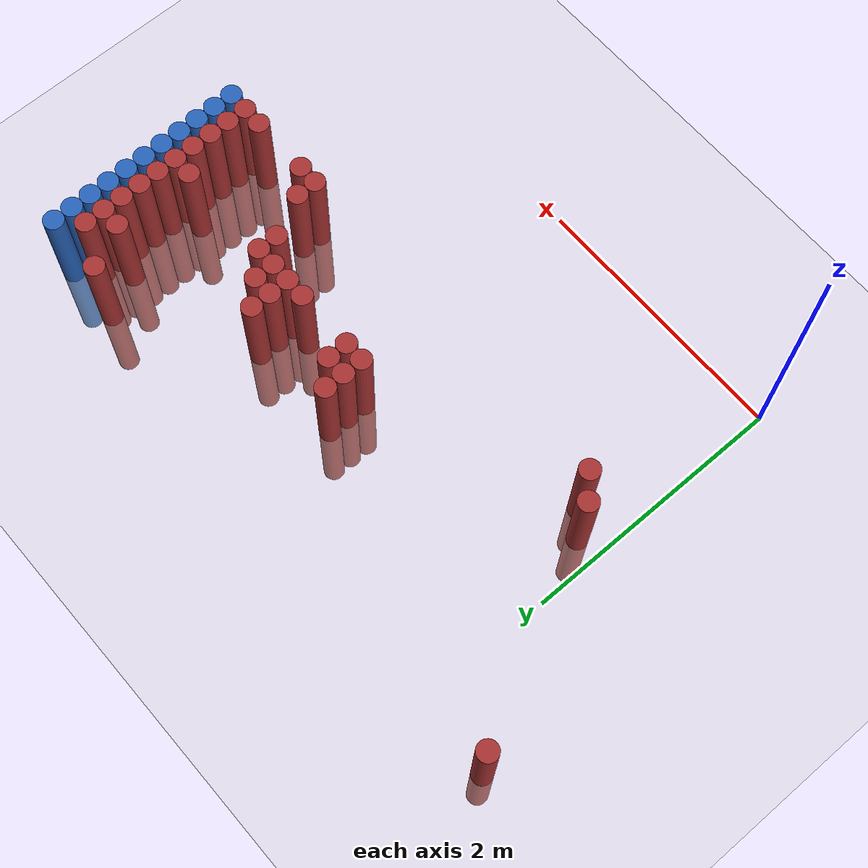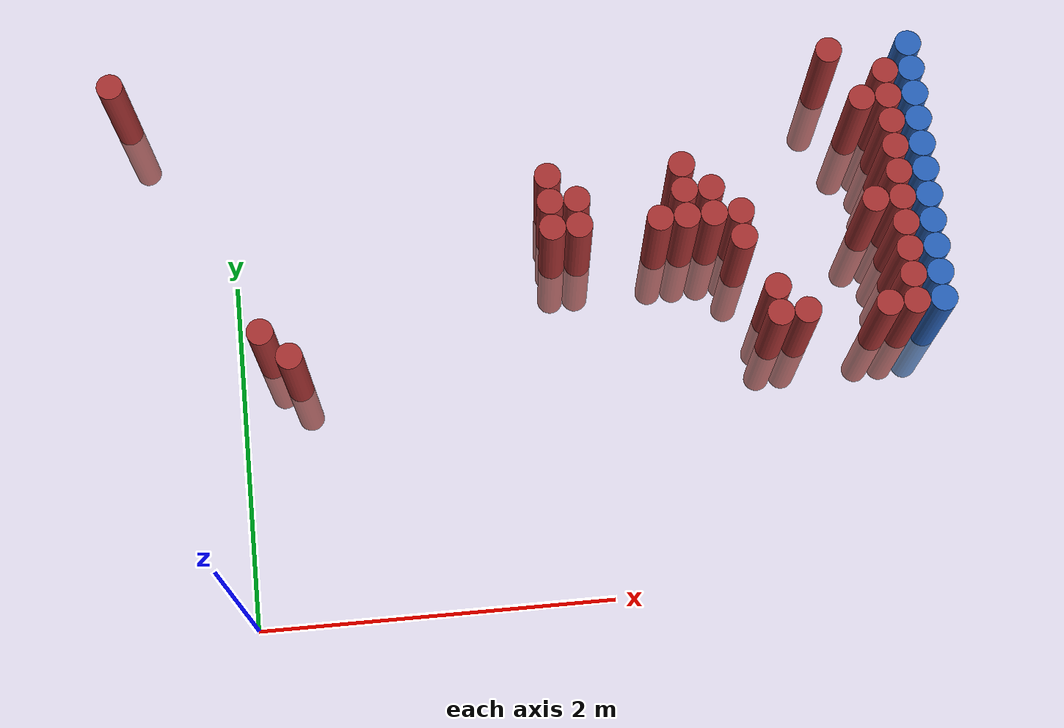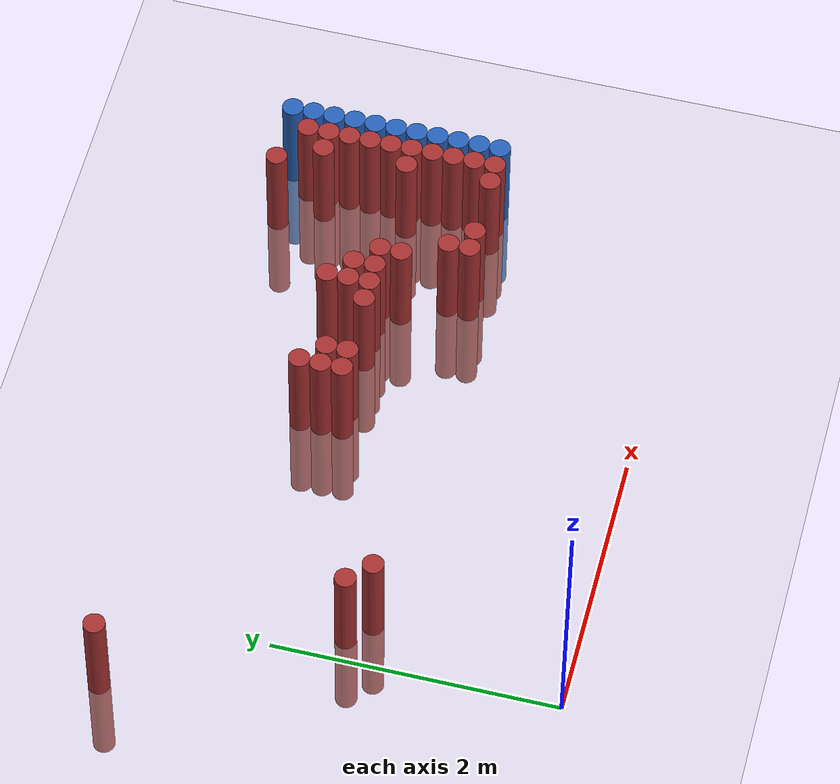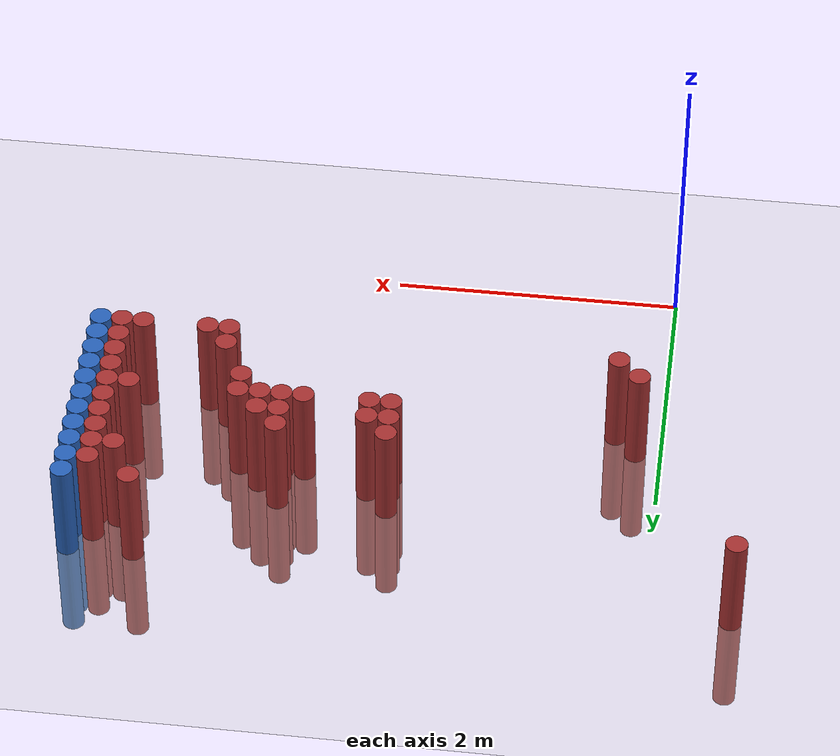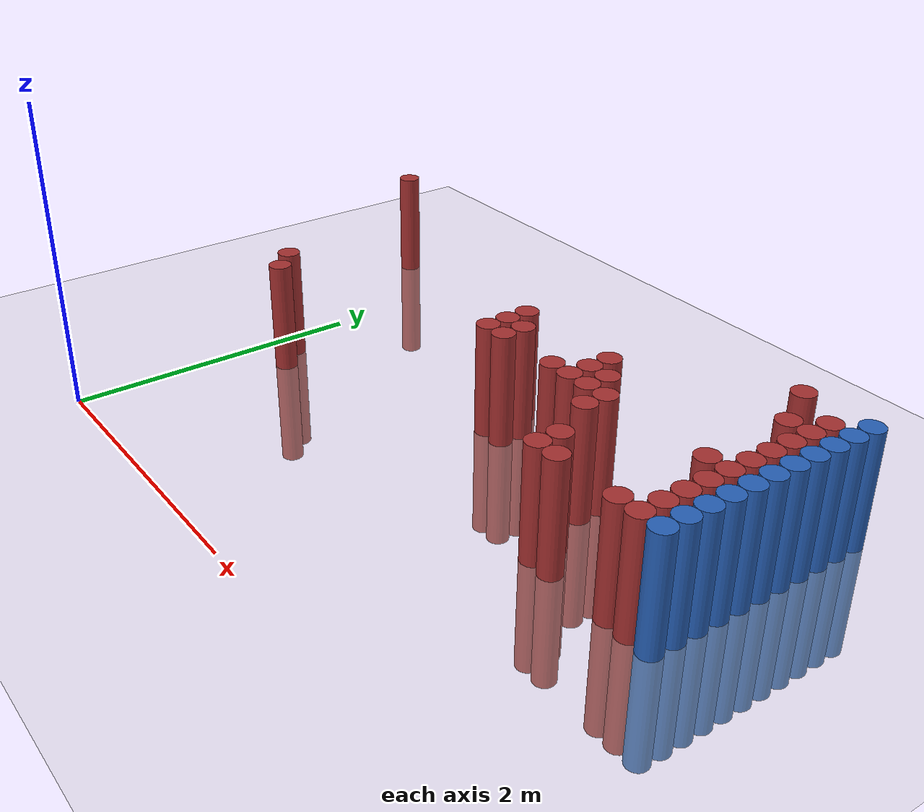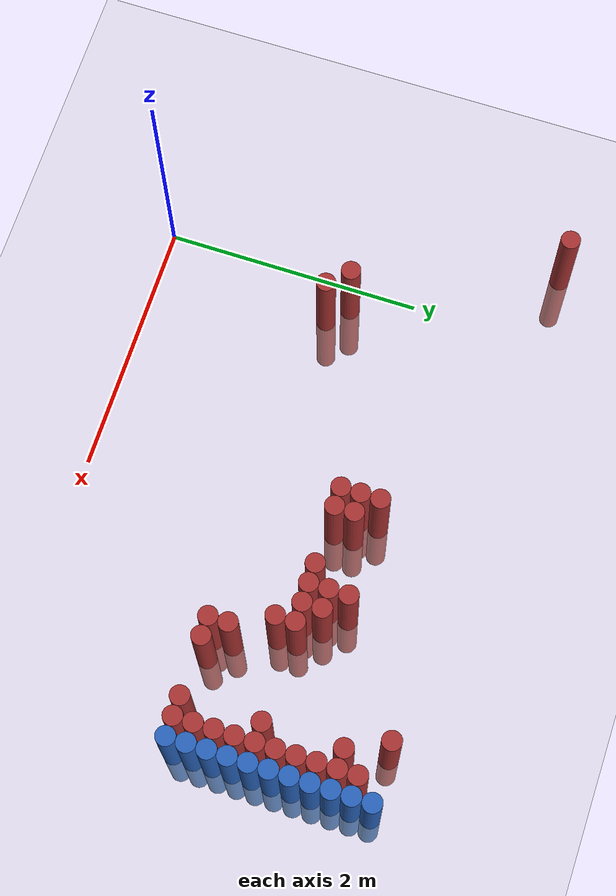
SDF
<sdf version="1.6">
 <world name="default">
  <model name="ground_plane">
   <static>1</static>
   <link name="link">
    <collision name="collision">
     <geometry><plane><normal>0 0 1</normal><size>100 100</size></plane></geometry>
     <surface><friction><ode><mu>100</mu><mu2>50</mu2></ode></friction></surface>
    </collision>
    <visual name="visual">
     <cast_shadows>0</cast_shadows>
     <geometry><plane><normal>0 0 1</normal><size>100 100</size></plane></geometry>
     <material>
      <script><uri>file://media/materials/scripts/gazebo.material</uri><name>Gazebo/Grey</name></script>
     </material>
    </visual>
   </link>
  </model>
  <model name="unit_cylinder_134">
   <static>1</static>
   <pose>3.925000 1.525000 0.000000 0.000000 0.000000 0.000000</pose>
   <link name="link">
    <inertial>
     <mass>1</mass>
     <inertia><ixx>0.145833</ixx><ixy>0</ixy><ixz>0</ixz><iyy>0.145833</iyy><iyz>0</iyz><izz>0.125</izz></inertia>
    </inertial>
    <collision name="collision">
     <geometry><cylinder><radius>0.075000</radius><length>1.5</length></cylinder></geometry>
    </collision>
    <visual name="visual">
     <geometry><cylinder><radius>0.075000</radius><length>1.5</length></cylinder></geometry>
     <material>
      <ambient>0.152000 0.379000 0.720000 1</ambient>
      <diffuse>0.152000 0.379000 0.720000 1</diffuse>
     </material>
     <material>
      <script><name>Gazebo/Grey</name><uri>file://media/materials/scripts/gazebo.material</uri></script>
     </material>
    </visual>
   </link>
  </model>
  <model name="unit_cylinder_136">
   <static>1</static>
   <pose>3.925000 1.675000 0.000000 0.000000 0.000000 0.000000</pose>
   <link name="link">
    <inertial>
     <mass>1</mass>
     <inertia><ixx>0.145833</ixx><ixy>0</ixy><ixz>0</ixz><iyy>0.145833</iyy><iyz>0</iyz><izz>0.125</izz></inertia>
    </inertial>
    <collision name="collision">
     <geometry><cylinder><radius>0.075000</radius><length>1.5</length></cylinder></geometry>
    </collision>
    <visual name="visual">
     <geometry><cylinder><radius>0.075000</radius><length>1.5</length></cylinder></geometry>
     <material>
      <ambient>0.152000 0.379000 0.720000 1</ambient>
      <diffuse>0.152000 0.379000 0.720000 1</diffuse>
     </material>
     <material>
      <script><name>Gazebo/Grey</name><uri>file://media/materials/scripts/gazebo.material</uri></script>
     </material>
    </visual>
   </link>
  </model>
  <model name="unit_cylinder_138">
   <static>1</static>
   <pose>3.925000 1.825000 0.000000 0.000000 0.000000 0.000000</pose>
   <link name="link">
    <inertial>
     <mass>1</mass>
     <inertia><ixx>0.145833</ixx><ixy>0</ixy><ixz>0</ixz><iyy>0.145833</iyy><iyz>0</iyz><izz>0.125</izz></inertia>
    </inertial>
    <collision name="collision">
     <geometry><cylinder><radius>0.075000</radius><length>1.5</length></cylinder></geometry>
    </collision>
    <visual name="visual">
     <geometry><cylinder><radius>0.075000</radius><length>1.5</length></cylinder></geometry>
     <material>
      <ambient>0.152000 0.379000 0.720000 1</ambient>
      <diffuse>0.152000 0.379000 0.720000 1</diffuse>
     </material>
     <material>
      <script><name>Gazebo/Grey</name><uri>file://media/materials/scripts/gazebo.material</uri></script>
     </material>
    </visual>
   </link>
  </model>
  <model name="unit_cylinder_140">
   <static>1</static>
   <pose>3.925000 1.975000 0.000000 0.000000 0.000000 0.000000</pose>
   <link name="link">
    <inertial>
     <mass>1</mass>
     <inertia><ixx>0.145833</ixx><ixy>0</ixy><ixz>0</ixz><iyy>0.145833</iyy><iyz>0</iyz><izz>0.125</izz></inertia>
    </inertial>
    <collision name="collision">
     <geometry><cylinder><radius>0.075000</radius><length>1.5</length></cylinder></geometry>
    </collision>
    <visual name="visual">
     <geometry><cylinder><radius>0.075000</radius><length>1.5</length></cylinder></geometry>
     <material>
      <ambient>0.152000 0.379000 0.720000 1</ambient>
      <diffuse>0.152000 0.379000 0.720000 1</diffuse>
     </material>
     <material>
      <script><name>Gazebo/Grey</name><uri>file://media/materials/scripts/gazebo.material</uri></script>
     </material>
    </visual>
   </link>
  </model>
  <model name="unit_cylinder_142">
   <static>1</static>
   <pose>3.925000 2.125000 0.000000 0.000000 0.000000 0.000000</pose>
   <link name="link">
    <inertial>
     <mass>1</mass>
     <inertia><ixx>0.145833</ixx><ixy>0</ixy><ixz>0</ixz><iyy>0.145833</iyy><iyz>0</iyz><izz>0.125</izz></inertia>
    </inertial>
    <collision name="collision">
     <geometry><cylinder><radius>0.075000</radius><length>1.5</length></cylinder></geometry>
    </collision>
    <visual name="visual">
     <geometry><cylinder><radius>0.075000</radius><length>1.5</length></cylinder></geometry>
     <material>
      <ambient>0.152000 0.379000 0.720000 1</ambient>
      <diffuse>0.152000 0.379000 0.720000 1</diffuse>
     </material>
     <material>
      <script><name>Gazebo/Grey</name><uri>file://media/materials/scripts/gazebo.material</uri></script>
     </material>
    </visual>
   </link>
  </model>
  <model name="unit_cylinder_144">
   <static>1</static>
   <pose>3.925000 2.275000 0.000000 0.000000 0.000000 0.000000</pose>
   <link name="link">
    <inertial>
     <mass>1</mass>
     <inertia><ixx>0.145833</ixx><ixy>0</ixy><ixz>0</ixz><iyy>0.145833</iyy><iyz>0</iyz><izz>0.125</izz></inertia>
    </inertial>
    <collision name="collision">
     <geometry><cylinder><radius>0.075000</radius><length>1.5</length></cylinder></geometry>
    </collision>
    <visual name="visual">
     <geometry><cylinder><radius>0.075000</radius><length>1.5</length></cylinder></geometry>
     <material>
      <ambient>0.152000 0.379000 0.720000 1</ambient>
      <diffuse>0.152000 0.379000 0.720000 1</diffuse>
     </material>
     <material>
      <script><name>Gazebo/Grey</name><uri>file://media/materials/scripts/gazebo.material</uri></script>
     </material>
    </visual>
   </link>
  </model>
  <model name="unit_cylinder_146">
   <static>1</static>
   <pose>3.925000 2.425000 0.000000 0.000000 0.000000 0.000000</pose>
   <link name="link">
    <inertial>
     <mass>1</mass>
     <inertia><ixx>0.145833</ixx><ixy>0</ixy><ixz>0</ixz><iyy>0.145833</iyy><iyz>0</iyz><izz>0.125</izz></inertia>
    </inertial>
    <collision name="collision">
     <geometry><cylinder><radius>0.075000</radius><length>1.5</length></cylinder></geometry>
    </collision>
    <visual name="visual">
     <geometry><cylinder><radius>0.075000</radius><length>1.5</length></cylinder></geometry>
     <material>
      <ambient>0.152000 0.379000 0.720000 1</ambient>
      <diffuse>0.152000 0.379000 0.720000 1</diffuse>
     </material>
     <material>
      <script><name>Gazebo/Grey</name><uri>file://media/materials/scripts/gazebo.material</uri></script>
     </material>
    </visual>
   </link>
  </model>
  <model name="unit_cylinder_148">
   <static>1</static>
   <pose>3.925000 2.575000 0.000000 0.000000 0.000000 0.000000</pose>
   <link name="link">
    <inertial>
     <mass>1</mass>
     <inertia><ixx>0.145833</ixx><ixy>0</ixy><ixz>0</ixz><iyy>0.145833</iyy><iyz>0</iyz><izz>0.125</izz></inertia>
    </inertial>
    <collision name="collision">
     <geometry><cylinder><radius>0.075000</radius><length>1.5</length></cylinder></geometry>
    </collision>
    <visual name="visual">
     <geometry><cylinder><radius>0.075000</radius><length>1.5</length></cylinder></geometry>
     <material>
      <ambient>0.152000 0.379000 0.720000 1</ambient>
      <diffuse>0.152000 0.379000 0.720000 1</diffuse>
     </material>
     <material>
      <script><name>Gazebo/Grey</name><uri>file://media/materials/scripts/gazebo.material</uri></script>
     </material>
    </visual>
   </link>
  </model>
  <model name="unit_cylinder_150">
   <static>1</static>
   <pose>3.925000 2.725000 0.000000 0.000000 0.000000 0.000000</pose>
   <link name="link">
    <inertial>
     <mass>1</mass>
     <inertia><ixx>0.145833</ixx><ixy>0</ixy><ixz>0</ixz><iyy>0.145833</iyy><iyz>0</iyz><izz>0.125</izz></inertia>
    </inertial>
    <collision name="collision">
     <geometry><cylinder><radius>0.075000</radius><length>1.5</length></cylinder></geometry>
    </collision>
    <visual name="visual">
     <geometry><cylinder><radius>0.075000</radius><length>1.5</length></cylinder></geometry>
     <material>
      <ambient>0.152000 0.379000 0.720000 1</ambient>
      <diffuse>0.152000 0.379000 0.720000 1</diffuse>
     </material>
     <material>
      <script><name>Gazebo/Grey</name><uri>file://media/materials/scripts/gazebo.material</uri></script>
     </material>
    </visual>
   </link>
  </model>
  <model name="unit_cylinder_152">
   <static>1</static>
   <pose>3.925000 2.875000 0.000000 0.000000 0.000000 0.000000</pose>
   <link name="link">
    <inertial>
     <mass>1</mass>
     <inertia><ixx>0.145833</ixx><ixy>0</ixy><ixz>0</ixz><iyy>0.145833</iyy><iyz>0</iyz><izz>0.125</izz></inertia>
    </inertial>
    <collision name="collision">
     <geometry><cylinder><radius>0.075000</radius><length>1.5</length></cylinder></geometry>
    </collision>
    <visual name="visual">
     <geometry><cylinder><radius>0.075000</radius><length>1.5</length></cylinder></geometry>
     <material>
      <ambient>0.152000 0.379000 0.720000 1</ambient>
      <diffuse>0.152000 0.379000 0.720000 1</diffuse>
     </material>
     <material>
      <script><name>Gazebo/Grey</name><uri>file://media/materials/scripts/gazebo.material</uri></script>
     </material>
    </visual>
   </link>
  </model>
  <model name="unit_cylinder_390">
   <static>1</static>
   <pose>-0.575000 3.025000 0.000000 0.000000 0.000000 0.000000</pose>
   <link name="link">
    <inertial>
     <mass>1</mass>
     <inertia><ixx>0.145833</ixx><ixy>0</ixy><ixz>0</ixz><iyy>0.145833</iyy><iyz>0</iyz><izz>0.125</izz></inertia>
    </inertial>
    <collision name="collision">
     <geometry><cylinder><radius>0.075000</radius><length>1.5</length></cylinder></geometry>
    </collision>
    <visual name="visual">
     <geometry><cylinder><radius>0.075000</radius><length>1.5</length></cylinder></geometry>
     <material>
      <ambient>0.648000 0.192000 0.192000 1</ambient>
      <diffuse>0.648000 0.192000 0.192000 1</diffuse>
     </material>
     <material>
      <script><name>Gazebo/Grey</name><uri>file://media/materials/scripts/gazebo.material</uri></script>
     </material>
    </visual>
   </link>
  </model>
  <model name="unit_cylinder_404">
   <static>1</static>
   <pose>0.175000 1.525000 0.000000 0.000000 0.000000 0.000000</pose>
   <link name="link">
    <inertial>
     <mass>1</mass>
     <inertia><ixx>0.145833</ixx><ixy>0</ixy><ixz>0</ixz><iyy>0.145833</iyy><iyz>0</iyz><izz>0.125</izz></inertia>
    </inertial>
    <collision name="collision">
     <geometry><cylinder><radius>0.075000</radius><length>1.5</length></cylinder></geometry>
    </collision>
    <visual name="visual">
     <geometry><cylinder><radius>0.075000</radius><length>1.5</length></cylinder></geometry>
     <material>
      <ambient>0.648000 0.192000 0.192000 1</ambient>
      <diffuse>0.648000 0.192000 0.192000 1</diffuse>
     </material>
     <material>
      <script><name>Gazebo/Grey</name><uri>file://media/materials/scripts/gazebo.material</uri></script>
     </material>
    </visual>
   </link>
  </model>
  <model name="unit_cylinder_414">
   <static>1</static>
   <pose>0.325000 1.375000 0.000000 0.000000 0.000000 0.000000</pose>
   <link name="link">
    <inertial>
     <mass>1</mass>
     <inertia><ixx>0.145833</ixx><ixy>0</ixy><ixz>0</ixz><iyy>0.145833</iyy><iyz>0</iyz><izz>0.125</izz></inertia>
    </inertial>
    <collision name="collision">
     <geometry><cylinder><radius>0.075000</radius><length>1.5</length></cylinder></geometry>
    </collision>
    <visual name="visual">
     <geometry><cylinder><radius>0.075000</radius><length>1.5</length></cylinder></geometry>
     <material>
      <ambient>0.648000 0.192000 0.192000 1</ambient>
      <diffuse>0.648000 0.192000 0.192000 1</diffuse>
     </material>
     <material>
      <script><name>Gazebo/Grey</name><uri>file://media/materials/scripts/gazebo.material</uri></script>
     </material>
    </visual>
   </link>
  </model>
  <model name="unit_cylinder_439">
   <static>1</static>
   <pose>1.825000 1.975000 0.000000 0.000000 0.000000 0.000000</pose>
   <link name="link">
    <inertial>
     <mass>1</mass>
     <inertia><ixx>0.145833</ixx><ixy>0</ixy><ixz>0</ixz><iyy>0.145833</iyy><iyz>0</iyz><izz>0.125</izz></inertia>
    </inertial>
    <collision name="collision">
     <geometry><cylinder><radius>0.075000</radius><length>1.5</length></cylinder></geometry>
    </collision>
    <visual name="visual">
     <geometry><cylinder><radius>0.075000</radius><length>1.5</length></cylinder></geometry>
     <material>
      <ambient>0.648000 0.192000 0.192000 1</ambient>
      <diffuse>0.648000 0.192000 0.192000 1</diffuse>
     </material>
     <material>
      <script><name>Gazebo/Grey</name><uri>file://media/materials/scripts/gazebo.material</uri></script>
     </material>
    </visual>
   </link>
  </model>
  <model name="unit_cylinder_440">
   <static>1</static>
   <pose>1.825000 2.125000 0.000000 0.000000 0.000000 0.000000</pose>
   <link name="link">
    <inertial>
     <mass>1</mass>
     <inertia><ixx>0.145833</ixx><ixy>0</ixy><ixz>0</ixz><iyy>0.145833</iyy><iyz>0</iyz><izz>0.125</izz></inertia>
    </inertial>
    <collision name="collision">
     <geometry><cylinder><radius>0.075000</radius><length>1.5</length></cylinder></geometry>
    </collision>
    <visual name="visual">
     <geometry><cylinder><radius>0.075000</radius><length>1.5</length></cylinder></geometry>
     <material>
      <ambient>0.648000 0.192000 0.192000 1</ambient>
      <diffuse>0.648000 0.192000 0.192000 1</diffuse>
     </material>
     <material>
      <script><name>Gazebo/Grey</name><uri>file://media/materials/scripts/gazebo.material</uri></script>
     </material>
    </visual>
   </link>
  </model>
  <model name="unit_cylinder_441">
   <static>1</static>
   <pose>1.825000 2.275000 0.000000 0.000000 0.000000 0.000000</pose>
   <link name="link">
    <inertial>
     <mass>1</mass>
     <inertia><ixx>0.145833</ixx><ixy>0</ixy><ixz>0</ixz><iyy>0.145833</iyy><iyz>0</iyz><izz>0.125</izz></inertia>
    </inertial>
    <collision name="collision">
     <geometry><cylinder><radius>0.075000</radius><length>1.5</length></cylinder></geometry>
    </collision>
    <visual name="visual">
     <geometry><cylinder><radius>0.075000</radius><length>1.5</length></cylinder></geometry>
     <material>
      <ambient>0.648000 0.192000 0.192000 1</ambient>
      <diffuse>0.648000 0.192000 0.192000 1</diffuse>
     </material>
     <material>
      <script><name>Gazebo/Grey</name><uri>file://media/materials/scripts/gazebo.material</uri></script>
     </material>
    </visual>
   </link>
  </model>
  <model name="unit_cylinder_445">
   <static>1</static>
   <pose>1.975000 1.975000 0.000000 0.000000 0.000000 0.000000</pose>
   <link name="link">
    <inertial>
     <mass>1</mass>
     <inertia><ixx>0.145833</ixx><ixy>0</ixy><ixz>0</ixz><iyy>0.145833</iyy><iyz>0</iyz><izz>0.125</izz></inertia>
    </inertial>
    <collision name="collision">
     <geometry><cylinder><radius>0.075000</radius><length>1.5</length></cylinder></geometry>
    </collision>
    <visual name="visual">
     <geometry><cylinder><radius>0.075000</radius><length>1.5</length></cylinder></geometry>
     <material>
      <ambient>0.648000 0.192000 0.192000 1</ambient>
      <diffuse>0.648000 0.192000 0.192000 1</diffuse>
     </material>
     <material>
      <script><name>Gazebo/Grey</name><uri>file://media/materials/scripts/gazebo.material</uri></script>
     </material>
    </visual>
   </link>
  </model>
  <model name="unit_cylinder_446">
   <static>1</static>
   <pose>1.975000 2.125000 0.000000 0.000000 0.000000 0.000000</pose>
   <link name="link">
    <inertial>
     <mass>1</mass>
     <inertia><ixx>0.145833</ixx><ixy>0</ixy><ixz>0</ixz><iyy>0.145833</iyy><iyz>0</iyz><izz>0.125</izz></inertia>
    </inertial>
    <collision name="collision">
     <geometry><cylinder><radius>0.075000</radius><length>1.5</length></cylinder></geometry>
    </collision>
    <visual name="visual">
     <geometry><cylinder><radius>0.075000</radius><length>1.5</length></cylinder></geometry>
     <material>
      <ambient>0.648000 0.192000 0.192000 1</ambient>
      <diffuse>0.648000 0.192000 0.192000 1</diffuse>
     </material>
     <material>
      <script><name>Gazebo/Grey</name><uri>file://media/materials/scripts/gazebo.material</uri></script>
     </material>
    </visual>
   </link>
  </model>
  <model name="unit_cylinder_467">
   <static>1</static>
   <pose>2.425000 1.975000 0.000000 0.000000 0.000000 0.000000</pose>
   <link name="link">
    <inertial>
     <mass>1</mass>
     <inertia><ixx>0.145833</ixx><ixy>0</ixy><ixz>0</ixz><iyy>0.145833</iyy><iyz>0</iyz><izz>0.125</izz></inertia>
    </inertial>
    <collision name="collision">
     <geometry><cylinder><radius>0.075000</radius><length>1.5</length></cylinder></geometry>
    </collision>
    <visual name="visual">
     <geometry><cylinder><radius>0.075000</radius><length>1.5</length></cylinder></geometry>
     <material>
      <ambient>0.648000 0.192000 0.192000 1</ambient>
      <diffuse>0.648000 0.192000 0.192000 1</diffuse>
     </material>
     <material>
      <script><name>Gazebo/Grey</name><uri>file://media/materials/scripts/gazebo.material</uri></script>
     </material>
    </visual>
   </link>
  </model>
  <model name="unit_cylinder_471">
   <static>1</static>
   <pose>2.575000 1.975000 0.000000 0.000000 0.000000 0.000000</pose>
   <link name="link">
    <inertial>
     <mass>1</mass>
     <inertia><ixx>0.145833</ixx><ixy>0</ixy><ixz>0</ixz><iyy>0.145833</iyy><iyz>0</iyz><izz>0.125</izz></inertia>
    </inertial>
    <collision name="collision">
     <geometry><cylinder><radius>0.075000</radius><length>1.5</length></cylinder></geometry>
    </collision>
    <visual name="visual">
     <geometry><cylinder><radius>0.075000</radius><length>1.5</length></cylinder></geometry>
     <material>
      <ambient>0.648000 0.192000 0.192000 1</ambient>
      <diffuse>0.648000 0.192000 0.192000 1</diffuse>
     </material>
     <material>
      <script><name>Gazebo/Grey</name><uri>file://media/materials/scripts/gazebo.material</uri></script>
     </material>
    </visual>
   </link>
  </model>
  <model name="unit_cylinder_472">
   <static>1</static>
   <pose>2.575000 2.125000 0.000000 0.000000 0.000000 0.000000</pose>
   <link name="link">
    <inertial>
     <mass>1</mass>
     <inertia><ixx>0.145833</ixx><ixy>0</ixy><ixz>0</ixz><iyy>0.145833</iyy><iyz>0</iyz><izz>0.125</izz></inertia>
    </inertial>
    <collision name="collision">
     <geometry><cylinder><radius>0.075000</radius><length>1.5</length></cylinder></geometry>
    </collision>
    <visual name="visual">
     <geometry><cylinder><radius>0.075000</radius><length>1.5</length></cylinder></geometry>
     <material>
      <ambient>0.648000 0.192000 0.192000 1</ambient>
      <diffuse>0.648000 0.192000 0.192000 1</diffuse>
     </material>
     <material>
      <script><name>Gazebo/Grey</name><uri>file://media/materials/scripts/gazebo.material</uri></script>
     </material>
    </visual>
   </link>
  </model>
  <model name="unit_cylinder_473">
   <static>1</static>
   <pose>2.575000 2.275000 0.000000 0.000000 0.000000 0.000000</pose>
   <link name="link">
    <inertial>
     <mass>1</mass>
     <inertia><ixx>0.145833</ixx><ixy>0</ixy><ixz>0</ixz><iyy>0.145833</iyy><iyz>0</iyz><izz>0.125</izz></inertia>
    </inertial>
    <collision name="collision">
     <geometry><cylinder><radius>0.075000</radius><length>1.5</length></cylinder></geometry>
    </collision>
    <visual name="visual">
     <geometry><cylinder><radius>0.075000</radius><length>1.5</length></cylinder></geometry>
     <material>
      <ambient>0.648000 0.192000 0.192000 1</ambient>
      <diffuse>0.648000 0.192000 0.192000 1</diffuse>
     </material>
     <material>
      <script><name>Gazebo/Grey</name><uri>file://media/materials/scripts/gazebo.material</uri></script>
     </material>
    </visual>
   </link>
  </model>
  <model name="unit_cylinder_474">
   <static>1</static>
   <pose>2.725000 1.975000 0.000000 0.000000 0.000000 0.000000</pose>
   <link name="link">
    <inertial>
     <mass>1</mass>
     <inertia><ixx>0.145833</ixx><ixy>0</ixy><ixz>0</ixz><iyy>0.145833</iyy><iyz>0</iyz><izz>0.125</izz></inertia>
    </inertial>
    <collision name="collision">
     <geometry><cylinder><radius>0.075000</radius><length>1.5</length></cylinder></geometry>
    </collision>
    <visual name="visual">
     <geometry><cylinder><radius>0.075000</radius><length>1.5</length></cylinder></geometry>
     <material>
      <ambient>0.648000 0.192000 0.192000 1</ambient>
      <diffuse>0.648000 0.192000 0.192000 1</diffuse>
     </material>
     <material>
      <script><name>Gazebo/Grey</name><uri>file://media/materials/scripts/gazebo.material</uri></script>
     </material>
    </visual>
   </link>
  </model>
  <model name="unit_cylinder_475">
   <static>1</static>
   <pose>2.725000 2.125000 0.000000 0.000000 0.000000 0.000000</pose>
   <link name="link">
    <inertial>
     <mass>1</mass>
     <inertia><ixx>0.145833</ixx><ixy>0</ixy><ixz>0</ixz><iyy>0.145833</iyy><iyz>0</iyz><izz>0.125</izz></inertia>
    </inertial>
    <collision name="collision">
     <geometry><cylinder><radius>0.075000</radius><length>1.5</length></cylinder></geometry>
    </collision>
    <visual name="visual">
     <geometry><cylinder><radius>0.075000</radius><length>1.5</length></cylinder></geometry>
     <material>
      <ambient>0.648000 0.192000 0.192000 1</ambient>
      <diffuse>0.648000 0.192000 0.192000 1</diffuse>
     </material>
     <material>
      <script><name>Gazebo/Grey</name><uri>file://media/materials/scripts/gazebo.material</uri></script>
     </material>
    </visual>
   </link>
  </model>
  <model name="unit_cylinder_483">
   <static>1</static>
   <pose>2.875000 1.825000 0.000000 0.000000 0.000000 0.000000</pose>
   <link name="link">
    <inertial>
     <mass>1</mass>
     <inertia><ixx>0.145833</ixx><ixy>0</ixy><ixz>0</ixz><iyy>0.145833</iyy><iyz>0</iyz><izz>0.125</izz></inertia>
    </inertial>
    <collision name="collision">
     <geometry><cylinder><radius>0.075000</radius><length>1.5</length></cylinder></geometry>
    </collision>
    <visual name="visual">
     <geometry><cylinder><radius>0.075000</radius><length>1.5</length></cylinder></geometry>
     <material>
      <ambient>0.648000 0.192000 0.192000 1</ambient>
      <diffuse>0.648000 0.192000 0.192000 1</diffuse>
     </material>
     <material>
      <script><name>Gazebo/Grey</name><uri>file://media/materials/scripts/gazebo.material</uri></script>
     </material>
    </visual>
   </link>
  </model>
  <model name="unit_cylinder_484">
   <static>1</static>
   <pose>2.875000 1.975000 0.000000 0.000000 0.000000 0.000000</pose>
   <link name="link">
    <inertial>
     <mass>1</mass>
     <inertia><ixx>0.145833</ixx><ixy>0</ixy><ixz>0</ixz><iyy>0.145833</iyy><iyz>0</iyz><izz>0.125</izz></inertia>
    </inertial>
    <collision name="collision">
     <geometry><cylinder><radius>0.075000</radius><length>1.5</length></cylinder></geometry>
    </collision>
    <visual name="visual">
     <geometry><cylinder><radius>0.075000</radius><length>1.5</length></cylinder></geometry>
     <material>
      <ambient>0.648000 0.192000 0.192000 1</ambient>
      <diffuse>0.648000 0.192000 0.192000 1</diffuse>
     </material>
     <material>
      <script><name>Gazebo/Grey</name><uri>file://media/materials/scripts/gazebo.material</uri></script>
     </material>
    </visual>
   </link>
  </model>
  <model name="unit_cylinder_491">
   <static>1</static>
   <pose>3.025000 1.375000 0.000000 0.000000 0.000000 0.000000</pose>
   <link name="link">
    <inertial>
     <mass>1</mass>
     <inertia><ixx>0.145833</ixx><ixy>0</ixy><ixz>0</ixz><iyy>0.145833</iyy><iyz>0</iyz><izz>0.125</izz></inertia>
    </inertial>
    <collision name="collision">
     <geometry><cylinder><radius>0.075000</radius><length>1.5</length></cylinder></geometry>
    </collision>
    <visual name="visual">
     <geometry><cylinder><radius>0.075000</radius><length>1.5</length></cylinder></geometry>
     <material>
      <ambient>0.648000 0.192000 0.192000 1</ambient>
      <diffuse>0.648000 0.192000 0.192000 1</diffuse>
     </material>
     <material>
      <script><name>Gazebo/Grey</name><uri>file://media/materials/scripts/gazebo.material</uri></script>
     </material>
    </visual>
   </link>
  </model>
  <model name="unit_cylinder_492">
   <static>1</static>
   <pose>3.025000 1.525000 0.000000 0.000000 0.000000 0.000000</pose>
   <link name="link">
    <inertial>
     <mass>1</mass>
     <inertia><ixx>0.145833</ixx><ixy>0</ixy><ixz>0</ixz><iyy>0.145833</iyy><iyz>0</iyz><izz>0.125</izz></inertia>
    </inertial>
    <collision name="collision">
     <geometry><cylinder><radius>0.075000</radius><length>1.5</length></cylinder></geometry>
    </collision>
    <visual name="visual">
     <geometry><cylinder><radius>0.075000</radius><length>1.5</length></cylinder></geometry>
     <material>
      <ambient>0.648000 0.192000 0.192000 1</ambient>
      <diffuse>0.648000 0.192000 0.192000 1</diffuse>
     </material>
     <material>
      <script><name>Gazebo/Grey</name><uri>file://media/materials/scripts/gazebo.material</uri></script>
     </material>
    </visual>
   </link>
  </model>
  <model name="unit_cylinder_498">
   <static>1</static>
   <pose>3.175000 1.375000 0.000000 0.000000 0.000000 0.000000</pose>
   <link name="link">
    <inertial>
     <mass>1</mass>
     <inertia><ixx>0.145833</ixx><ixy>0</ixy><ixz>0</ixz><iyy>0.145833</iyy><iyz>0</iyz><izz>0.125</izz></inertia>
    </inertial>
    <collision name="collision">
     <geometry><cylinder><radius>0.075000</radius><length>1.5</length></cylinder></geometry>
    </collision>
    <visual name="visual">
     <geometry><cylinder><radius>0.075000</radius><length>1.5</length></cylinder></geometry>
     <material>
      <ambient>0.648000 0.192000 0.192000 1</ambient>
      <diffuse>0.648000 0.192000 0.192000 1</diffuse>
     </material>
     <material>
      <script><name>Gazebo/Grey</name><uri>file://media/materials/scripts/gazebo.material</uri></script>
     </material>
    </visual>
   </link>
  </model>
  <model name="unit_cylinder_511">
   <static>1</static>
   <pose>3.475000 2.875000 0.000000 0.000000 0.000000 0.000000</pose>
   <link name="link">
    <inertial>
     <mass>1</mass>
     <inertia><ixx>0.145833</ixx><ixy>0</ixy><ixz>0</ixz><iyy>0.145833</iyy><iyz>0</iyz><izz>0.125</izz></inertia>
    </inertial>
    <collision name="collision">
     <geometry><cylinder><radius>0.075000</radius><length>1.5</length></cylinder></geometry>
    </collision>
    <visual name="visual">
     <geometry><cylinder><radius>0.075000</radius><length>1.5</length></cylinder></geometry>
     <material>
      <ambient>0.648000 0.192000 0.192000 1</ambient>
      <diffuse>0.648000 0.192000 0.192000 1</diffuse>
     </material>
     <material>
      <script><name>Gazebo/Grey</name><uri>file://media/materials/scripts/gazebo.material</uri></script>
     </material>
    </visual>
   </link>
  </model>
  <model name="unit_cylinder_513">
   <static>1</static>
   <pose>3.625000 1.375000 0.000000 0.000000 0.000000 0.000000</pose>
   <link name="link">
    <inertial>
     <mass>1</mass>
     <inertia><ixx>0.145833</ixx><ixy>0</ixy><ixz>0</ixz><iyy>0.145833</iyy><iyz>0</iyz><izz>0.125</izz></inertia>
    </inertial>
    <collision name="collision">
     <geometry><cylinder><radius>0.075000</radius><length>1.5</length></cylinder></geometry>
    </collision>
    <visual name="visual">
     <geometry><cylinder><radius>0.075000</radius><length>1.5</length></cylinder></geometry>
     <material>
      <ambient>0.648000 0.192000 0.192000 1</ambient>
      <diffuse>0.648000 0.192000 0.192000 1</diffuse>
     </material>
     <material>
      <script><name>Gazebo/Grey</name><uri>file://media/materials/scripts/gazebo.material</uri></script>
     </material>
    </visual>
   </link>
  </model>
  <model name="unit_cylinder_514">
   <static>1</static>
   <pose>3.625000 1.975000 0.000000 0.000000 0.000000 0.000000</pose>
   <link name="link">
    <inertial>
     <mass>1</mass>
     <inertia><ixx>0.145833</ixx><ixy>0</ixy><ixz>0</ixz><iyy>0.145833</iyy><iyz>0</iyz><izz>0.125</izz></inertia>
    </inertial>
    <collision name="collision">
     <geometry><cylinder><radius>0.075000</radius><length>1.5</length></cylinder></geometry>
    </collision>
    <visual name="visual">
     <geometry><cylinder><radius>0.075000</radius><length>1.5</length></cylinder></geometry>
     <material>
      <ambient>0.648000 0.192000 0.192000 1</ambient>
      <diffuse>0.648000 0.192000 0.192000 1</diffuse>
     </material>
     <material>
      <script><name>Gazebo/Grey</name><uri>file://media/materials/scripts/gazebo.material</uri></script>
     </material>
    </visual>
   </link>
  </model>
  <model name="unit_cylinder_515">
   <static>1</static>
   <pose>3.625000 2.575000 0.000000 0.000000 0.000000 0.000000</pose>
   <link name="link">
    <inertial>
     <mass>1</mass>
     <inertia><ixx>0.145833</ixx><ixy>0</ixy><ixz>0</ixz><iyy>0.145833</iyy><iyz>0</iyz><izz>0.125</izz></inertia>
    </inertial>
    <collision name="collision">
     <geometry><cylinder><radius>0.075000</radius><length>1.5</length></cylinder></geometry>
    </collision>
    <visual name="visual">
     <geometry><cylinder><radius>0.075000</radius><length>1.5</length></cylinder></geometry>
     <material>
      <ambient>0.648000 0.192000 0.192000 1</ambient>
      <diffuse>0.648000 0.192000 0.192000 1</diffuse>
     </material>
     <material>
      <script><name>Gazebo/Grey</name><uri>file://media/materials/scripts/gazebo.material</uri></script>
     </material>
    </visual>
   </link>
  </model>
  <model name="unit_cylinder_525">
   <static>1</static>
   <pose>3.775000 1.375000 0.000000 0.000000 0.000000 0.000000</pose>
   <link name="link">
    <inertial>
     <mass>1</mass>
     <inertia><ixx>0.145833</ixx><ixy>0</ixy><ixz>0</ixz><iyy>0.145833</iyy><iyz>0</iyz><izz>0.125</izz></inertia>
    </inertial>
    <collision name="collision">
     <geometry><cylinder><radius>0.075000</radius><length>1.5</length></cylinder></geometry>
    </collision>
    <visual name="visual">
     <geometry><cylinder><radius>0.075000</radius><length>1.5</length></cylinder></geometry>
     <material>
      <ambient>0.648000 0.192000 0.192000 1</ambient>
      <diffuse>0.648000 0.192000 0.192000 1</diffuse>
     </material>
     <material>
      <script><name>Gazebo/Grey</name><uri>file://media/materials/scripts/gazebo.material</uri></script>
     </material>
    </visual>
   </link>
  </model>
  <model name="unit_cylinder_526">
   <static>1</static>
   <pose>3.775000 1.525000 0.000000 0.000000 0.000000 0.000000</pose>
   <link name="link">
    <inertial>
     <mass>1</mass>
     <inertia><ixx>0.145833</ixx><ixy>0</ixy><ixz>0</ixz><iyy>0.145833</iyy><iyz>0</iyz><izz>0.125</izz></inertia>
    </inertial>
    <collision name="collision">
     <geometry><cylinder><radius>0.075000</radius><length>1.5</length></cylinder></geometry>
    </collision>
    <visual name="visual">
     <geometry><cylinder><radius>0.075000</radius><length>1.5</length></cylinder></geometry>
     <material>
      <ambient>0.648000 0.192000 0.192000 1</ambient>
      <diffuse>0.648000 0.192000 0.192000 1</diffuse>
     </material>
     <material>
      <script><name>Gazebo/Grey</name><uri>file://media/materials/scripts/gazebo.material</uri></script>
     </material>
    </visual>
   </link>
  </model>
  <model name="unit_cylinder_527">
   <static>1</static>
   <pose>3.775000 1.675000 0.000000 0.000000 0.000000 0.000000</pose>
   <link name="link">
    <inertial>
     <mass>1</mass>
     <inertia><ixx>0.145833</ixx><ixy>0</ixy><ixz>0</ixz><iyy>0.145833</iyy><iyz>0</iyz><izz>0.125</izz></inertia>
    </inertial>
    <collision name="collision">
     <geometry><cylinder><radius>0.075000</radius><length>1.5</length></cylinder></geometry>
    </collision>
    <visual name="visual">
     <geometry><cylinder><radius>0.075000</radius><length>1.5</length></cylinder></geometry>
     <material>
      <ambient>0.648000 0.192000 0.192000 1</ambient>
      <diffuse>0.648000 0.192000 0.192000 1</diffuse>
     </material>
     <material>
      <script><name>Gazebo/Grey</name><uri>file://media/materials/scripts/gazebo.material</uri></script>
     </material>
    </visual>
   </link>
  </model>
  <model name="unit_cylinder_528">
   <static>1</static>
   <pose>3.775000 1.825000 0.000000 0.000000 0.000000 0.000000</pose>
   <link name="link">
    <inertial>
     <mass>1</mass>
     <inertia><ixx>0.145833</ixx><ixy>0</ixy><ixz>0</ixz><iyy>0.145833</iyy><iyz>0</iyz><izz>0.125</izz></inertia>
    </inertial>
    <collision name="collision">
     <geometry><cylinder><radius>0.075000</radius><length>1.5</length></cylinder></geometry>
    </collision>
    <visual name="visual">
     <geometry><cylinder><radius>0.075000</radius><length>1.5</length></cylinder></geometry>
     <material>
      <ambient>0.648000 0.192000 0.192000 1</ambient>
      <diffuse>0.648000 0.192000 0.192000 1</diffuse>
     </material>
     <material>
      <script><name>Gazebo/Grey</name><uri>file://media/materials/scripts/gazebo.material</uri></script>
     </material>
    </visual>
   </link>
  </model>
  <model name="unit_cylinder_529">
   <static>1</static>
   <pose>3.775000 1.975000 0.000000 0.000000 0.000000 0.000000</pose>
   <link name="link">
    <inertial>
     <mass>1</mass>
     <inertia><ixx>0.145833</ixx><ixy>0</ixy><ixz>0</ixz><iyy>0.145833</iyy><iyz>0</iyz><izz>0.125</izz></inertia>
    </inertial>
    <collision name="collision">
     <geometry><cylinder><radius>0.075000</radius><length>1.5</length></cylinder></geometry>
    </collision>
    <visual name="visual">
     <geometry><cylinder><radius>0.075000</radius><length>1.5</length></cylinder></geometry>
     <material>
      <ambient>0.648000 0.192000 0.192000 1</ambient>
      <diffuse>0.648000 0.192000 0.192000 1</diffuse>
     </material>
     <material>
      <script><name>Gazebo/Grey</name><uri>file://media/materials/scripts/gazebo.material</uri></script>
     </material>
    </visual>
   </link>
  </model>
  <model name="unit_cylinder_530">
   <static>1</static>
   <pose>3.775000 2.125000 0.000000 0.000000 0.000000 0.000000</pose>
   <link name="link">
    <inertial>
     <mass>1</mass>
     <inertia><ixx>0.145833</ixx><ixy>0</ixy><ixz>0</ixz><iyy>0.145833</iyy><iyz>0</iyz><izz>0.125</izz></inertia>
    </inertial>
    <collision name="collision">
     <geometry><cylinder><radius>0.075000</radius><length>1.5</length></cylinder></geometry>
    </collision>
    <visual name="visual">
     <geometry><cylinder><radius>0.075000</radius><length>1.5</length></cylinder></geometry>
     <material>
      <ambient>0.648000 0.192000 0.192000 1</ambient>
      <diffuse>0.648000 0.192000 0.192000 1</diffuse>
     </material>
     <material>
      <script><name>Gazebo/Grey</name><uri>file://media/materials/scripts/gazebo.material</uri></script>
     </material>
    </visual>
   </link>
  </model>
  <model name="unit_cylinder_531">
   <static>1</static>
   <pose>3.775000 2.275000 0.000000 0.000000 0.000000 0.000000</pose>
   <link name="link">
    <inertial>
     <mass>1</mass>
     <inertia><ixx>0.145833</ixx><ixy>0</ixy><ixz>0</ixz><iyy>0.145833</iyy><iyz>0</iyz><izz>0.125</izz></inertia>
    </inertial>
    <collision name="collision">
     <geometry><cylinder><radius>0.075000</radius><length>1.5</length></cylinder></geometry>
    </collision>
    <visual name="visual">
     <geometry><cylinder><radius>0.075000</radius><length>1.5</length></cylinder></geometry>
     <material>
      <ambient>0.648000 0.192000 0.192000 1</ambient>
      <diffuse>0.648000 0.192000 0.192000 1</diffuse>
     </material>
     <material>
      <script><name>Gazebo/Grey</name><uri>file://media/materials/scripts/gazebo.material</uri></script>
     </material>
    </visual>
   </link>
  </model>
  <model name="unit_cylinder_532">
   <static>1</static>
   <pose>3.775000 2.425000 0.000000 0.000000 0.000000 0.000000</pose>
   <link name="link">
    <inertial>
     <mass>1</mass>
     <inertia><ixx>0.145833</ixx><ixy>0</ixy><ixz>0</ixz><iyy>0.145833</iyy><iyz>0</iyz><izz>0.125</izz></inertia>
    </inertial>
    <collision name="collision">
     <geometry><cylinder><radius>0.075000</radius><length>1.5</length></cylinder></geometry>
    </collision>
    <visual name="visual">
     <geometry><cylinder><radius>0.075000</radius><length>1.5</length></cylinder></geometry>
     <material>
      <ambient>0.648000 0.192000 0.192000 1</ambient>
      <diffuse>0.648000 0.192000 0.192000 1</diffuse>
     </material>
     <material>
      <script><name>Gazebo/Grey</name><uri>file://media/materials/scripts/gazebo.material</uri></script>
     </material>
    </visual>
   </link>
  </model>
  <model name="unit_cylinder_533">
   <static>1</static>
   <pose>3.775000 2.575000 0.000000 0.000000 0.000000 0.000000</pose>
   <link name="link">
    <inertial>
     <mass>1</mass>
     <inertia><ixx>0.145833</ixx><ixy>0</ixy><ixz>0</ixz><iyy>0.145833</iyy><iyz>0</iyz><izz>0.125</izz></inertia>
    </inertial>
    <collision name="collision">
     <geometry><cylinder><radius>0.075000</radius><length>1.5</length></cylinder></geometry>
    </collision>
    <visual name="visual">
     <geometry><cylinder><radius>0.075000</radius><length>1.5</length></cylinder></geometry>
     <material>
      <ambient>0.648000 0.192000 0.192000 1</ambient>
      <diffuse>0.648000 0.192000 0.192000 1</diffuse>
     </material>
     <material>
      <script><name>Gazebo/Grey</name><uri>file://media/materials/scripts/gazebo.material</uri></script>
     </material>
    </visual>
   </link>
  </model>
  <model name="unit_cylinder_534">
   <static>1</static>
   <pose>3.775000 2.725000 0.000000 0.000000 0.000000 0.000000</pose>
   <link name="link">
    <inertial>
     <mass>1</mass>
     <inertia><ixx>0.145833</ixx><ixy>0</ixy><ixz>0</ixz><iyy>0.145833</iyy><iyz>0</iyz><izz>0.125</izz></inertia>
    </inertial>
    <collision name="collision">
     <geometry><cylinder><radius>0.075000</radius><length>1.5</length></cylinder></geometry>
    </collision>
    <visual name="visual">
     <geometry><cylinder><radius>0.075000</radius><length>1.5</length></cylinder></geometry>
     <material>
      <ambient>0.648000 0.192000 0.192000 1</ambient>
      <diffuse>0.648000 0.192000 0.192000 1</diffuse>
     </material>
     <material>
      <script><name>Gazebo/Grey</name><uri>file://media/materials/scripts/gazebo.material</uri></script>
     </material>
    </visual>
   </link>
  </model>
  <model name="unit_cylinder_564">
   <static>1</static>
   <pose>3.925000 1.375000 0.000000 0.000000 0.000000 0.000000</pose>
   <link name="link">
    <inertial>
     <mass>1</mass>
     <inertia><ixx>0.145833</ixx><ixy>0</ixy><ixz>0</ixz><iyy>0.145833</iyy><iyz>0</iyz><izz>0.125</izz></inertia>
    </inertial>
    <collision name="collision">
     <geometry><cylinder><radius>0.075000</radius><length>1.5</length></cylinder></geometry>
    </collision>
    <visual name="visual">
     <geometry><cylinder><radius>0.075000</radius><length>1.5</length></cylinder></geometry>
     <material>
      <ambient>0.152000 0.379000 0.720000 1</ambient>
      <diffuse>0.152000 0.379000 0.720000 1</diffuse>
     </material>
     <material>
      <script><name>Gazebo/Grey</name><uri>file://media/materials/scripts/gazebo.material</uri></script>
     </material>
    </visual>
   </link>
  </model>
  <model name="unit_cylinder_565">
   <static>1</static>
   <pose>3.925000 1.525000 0.000000 0.000000 0.000000 0.000000</pose>
   <link name="link">
    <inertial>
     <mass>1</mass>
     <inertia><ixx>0.145833</ixx><ixy>0</ixy><ixz>0</ixz><iyy>0.145833</iyy><iyz>0</iyz><izz>0.125</izz></inertia>
    </inertial>
    <collision name="collision">
     <geometry><cylinder><radius>0.075000</radius><length>1.5</length></cylinder></geometry>
    </collision>
    <visual name="visual">
     <geometry><cylinder><radius>0.075000</radius><length>1.5</length></cylinder></geometry>
     <material>
      <ambient>0.152000 0.379000 0.720000 1</ambient>
      <diffuse>0.152000 0.379000 0.720000 1</diffuse>
     </material>
     <material>
      <script><name>Gazebo/Grey</name><uri>file://media/materials/scripts/gazebo.material</uri></script>
     </material>
    </visual>
   </link>
  </model>
  <model name="unit_cylinder_566">
   <static>1</static>
   <pose>3.925000 1.675000 0.000000 0.000000 0.000000 0.000000</pose>
   <link name="link">
    <inertial>
     <mass>1</mass>
     <inertia><ixx>0.145833</ixx><ixy>0</ixy><ixz>0</ixz><iyy>0.145833</iyy><iyz>0</iyz><izz>0.125</izz></inertia>
    </inertial>
    <collision name="collision">
     <geometry><cylinder><radius>0.075000</radius><length>1.5</length></cylinder></geometry>
    </collision>
    <visual name="visual">
     <geometry><cylinder><radius>0.075000</radius><length>1.5</length></cylinder></geometry>
     <material>
      <ambient>0.152000 0.379000 0.720000 1</ambient>
      <diffuse>0.152000 0.379000 0.720000 1</diffuse>
     </material>
     <material>
      <script><name>Gazebo/Grey</name><uri>file://media/materials/scripts/gazebo.material</uri></script>
     </material>
    </visual>
   </link>
  </model>
  <model name="unit_cylinder_567">
   <static>1</static>
   <pose>3.925000 1.825000 0.000000 0.000000 0.000000 0.000000</pose>
   <link name="link">
    <inertial>
     <mass>1</mass>
     <inertia><ixx>0.145833</ixx><ixy>0</ixy><ixz>0</ixz><iyy>0.145833</iyy><iyz>0</iyz><izz>0.125</izz></inertia>
    </inertial>
    <collision name="collision">
     <geometry><cylinder><radius>0.075000</radius><length>1.5</length></cylinder></geometry>
    </collision>
    <visual name="visual">
     <geometry><cylinder><radius>0.075000</radius><length>1.5</length></cylinder></geometry>
     <material>
      <ambient>0.152000 0.379000 0.720000 1</ambient>
      <diffuse>0.152000 0.379000 0.720000 1</diffuse>
     </material>
     <material>
      <script><name>Gazebo/Grey</name><uri>file://media/materials/scripts/gazebo.material</uri></script>
     </material>
    </visual>
   </link>
  </model>
  <model name="unit_cylinder_568">
   <static>1</static>
   <pose>3.925000 1.975000 0.000000 0.000000 0.000000 0.000000</pose>
   <link name="link">
    <inertial>
     <mass>1</mass>
     <inertia><ixx>0.145833</ixx><ixy>0</ixy><ixz>0</ixz><iyy>0.145833</iyy><iyz>0</iyz><izz>0.125</izz></inertia>
    </inertial>
    <collision name="collision">
     <geometry><cylinder><radius>0.075000</radius><length>1.5</length></cylinder></geometry>
    </collision>
    <visual name="visual">
     <geometry><cylinder><radius>0.075000</radius><length>1.5</length></cylinder></geometry>
     <material>
      <ambient>0.152000 0.379000 0.720000 1</ambient>
      <diffuse>0.152000 0.379000 0.720000 1</diffuse>
     </material>
     <material>
      <script><name>Gazebo/Grey</name><uri>file://media/materials/scripts/gazebo.material</uri></script>
     </material>
    </visual>
   </link>
  </model>
  <model name="unit_cylinder_569">
   <static>1</static>
   <pose>3.925000 2.125000 0.000000 0.000000 0.000000 0.000000</pose>
   <link name="link">
    <inertial>
     <mass>1</mass>
     <inertia><ixx>0.145833</ixx><ixy>0</ixy><ixz>0</ixz><iyy>0.145833</iyy><iyz>0</iyz><izz>0.125</izz></inertia>
    </inertial>
    <collision name="collision">
     <geometry><cylinder><radius>0.075000</radius><length>1.5</length></cylinder></geometry>
    </collision>
    <visual name="visual">
     <geometry><cylinder><radius>0.075000</radius><length>1.5</length></cylinder></geometry>
     <material>
      <ambient>0.152000 0.379000 0.720000 1</ambient>
      <diffuse>0.152000 0.379000 0.720000 1</diffuse>
     </material>
     <material>
      <script><name>Gazebo/Grey</name><uri>file://media/materials/scripts/gazebo.material</uri></script>
     </material>
    </visual>
   </link>
  </model>
  <model name="unit_cylinder_570">
   <static>1</static>
   <pose>3.925000 2.275000 0.000000 0.000000 0.000000 0.000000</pose>
   <link name="link">
    <inertial>
     <mass>1</mass>
     <inertia><ixx>0.145833</ixx><ixy>0</ixy><ixz>0</ixz><iyy>0.145833</iyy><iyz>0</iyz><izz>0.125</izz></inertia>
    </inertial>
    <collision name="collision">
     <geometry><cylinder><radius>0.075000</radius><length>1.5</length></cylinder></geometry>
    </collision>
    <visual name="visual">
     <geometry><cylinder><radius>0.075000</radius><length>1.5</length></cylinder></geometry>
     <material>
      <ambient>0.152000 0.379000 0.720000 1</ambient>
      <diffuse>0.152000 0.379000 0.720000 1</diffuse>
     </material>
     <material>
      <script><name>Gazebo/Grey</name><uri>file://media/materials/scripts/gazebo.material</uri></script>
     </material>
    </visual>
   </link>
  </model>
  <model name="unit_cylinder_571">
   <static>1</static>
   <pose>3.925000 2.425000 0.000000 0.000000 0.000000 0.000000</pose>
   <link name="link">
    <inertial>
     <mass>1</mass>
     <inertia><ixx>0.145833</ixx><ixy>0</ixy><ixz>0</ixz><iyy>0.145833</iyy><iyz>0</iyz><izz>0.125</izz></inertia>
    </inertial>
    <collision name="collision">
     <geometry><cylinder><radius>0.075000</radius><length>1.5</length></cylinder></geometry>
    </collision>
    <visual name="visual">
     <geometry><cylinder><radius>0.075000</radius><length>1.5</length></cylinder></geometry>
     <material>
      <ambient>0.152000 0.379000 0.720000 1</ambient>
      <diffuse>0.152000 0.379000 0.720000 1</diffuse>
     </material>
     <material>
      <script><name>Gazebo/Grey</name><uri>file://media/materials/scripts/gazebo.material</uri></script>
     </material>
    </visual>
   </link>
  </model>
  <model name="unit_cylinder_572">
   <static>1</static>
   <pose>3.925000 2.575000 0.000000 0.000000 0.000000 0.000000</pose>
   <link name="link">
    <inertial>
     <mass>1</mass>
     <inertia><ixx>0.145833</ixx><ixy>0</ixy><ixz>0</ixz><iyy>0.145833</iyy><iyz>0</iyz><izz>0.125</izz></inertia>
    </inertial>
    <collision name="collision">
     <geometry><cylinder><radius>0.075000</radius><length>1.5</length></cylinder></geometry>
    </collision>
    <visual name="visual">
     <geometry><cylinder><radius>0.075000</radius><length>1.5</length></cylinder></geometry>
     <material>
      <ambient>0.152000 0.379000 0.720000 1</ambient>
      <diffuse>0.152000 0.379000 0.720000 1</diffuse>
     </material>
     <material>
      <script><name>Gazebo/Grey</name><uri>file://media/materials/scripts/gazebo.material</uri></script>
     </material>
    </visual>
   </link>
  </model>
  <model name="unit_cylinder_573">
   <static>1</static>
   <pose>3.925000 2.725000 0.000000 0.000000 0.000000 0.000000</pose>
   <link name="link">
    <inertial>
     <mass>1</mass>
     <inertia><ixx>0.145833</ixx><ixy>0</ixy><ixz>0</ixz><iyy>0.145833</iyy><iyz>0</iyz><izz>0.125</izz></inertia>
    </inertial>
    <collision name="collision">
     <geometry><cylinder><radius>0.075000</radius><length>1.5</length></cylinder></geometry>
    </collision>
    <visual name="visual">
     <geometry><cylinder><radius>0.075000</radius><length>1.5</length></cylinder></geometry>
     <material>
      <ambient>0.152000 0.379000 0.720000 1</ambient>
      <diffuse>0.152000 0.379000 0.720000 1</diffuse>
     </material>
     <material>
      <script><name>Gazebo/Grey</name><uri>file://media/materials/scripts/gazebo.material</uri></script>
     </material>
    </visual>
   </link>
  </model>
  <model name="unit_cylinder_574">
   <static>1</static>
   <pose>3.925000 2.875000 0.000000 0.000000 0.000000 0.000000</pose>
   <link name="link">
    <inertial>
     <mass>1</mass>
     <inertia><ixx>0.145833</ixx><ixy>0</ixy><ixz>0</ixz><iyy>0.145833</iyy><iyz>0</iyz><izz>0.125</izz></inertia>
    </inertial>
    <collision name="collision">
     <geometry><cylinder><radius>0.075000</radius><length>1.5</length></cylinder></geometry>
    </collision>
    <visual name="visual">
     <geometry><cylinder><radius>0.075000</radius><length>1.5</length></cylinder></geometry>
     <material>
      <ambient>0.152000 0.379000 0.720000 1</ambient>
      <diffuse>0.152000 0.379000 0.720000 1</diffuse>
     </material>
     <material>
      <script><name>Gazebo/Grey</name><uri>file://media/materials/scripts/gazebo.material</uri></script>
     </material>
    </visual>
   </link>
  </model>
 </world>
</sdf>
